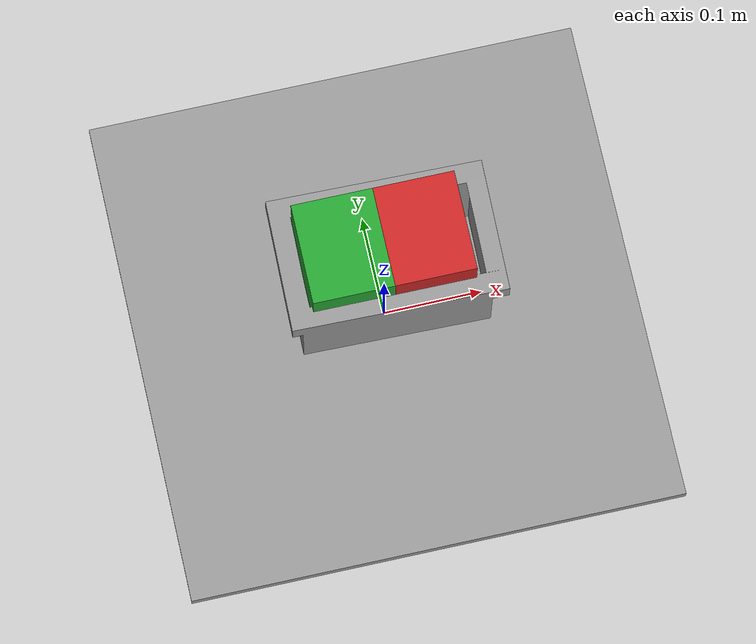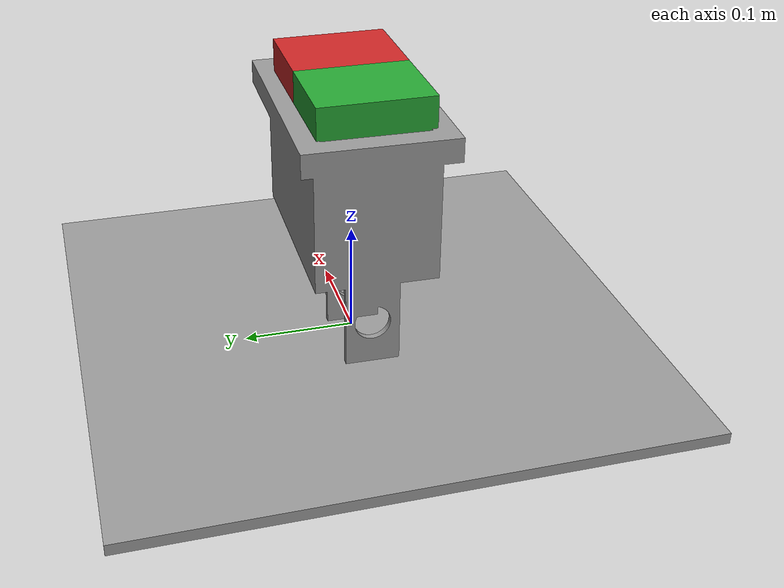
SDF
<?xml version="1.0" ?>
<sdf version="1.5">
  <model name="power_switch">
    <pose>0 0 0.155 0 3.14 0</pose>
    <link name="body">
      <collision name="collision">
        <pose>0 0 0.0 0 0 0</pose>
        <geometry>
          <mesh>
            <uri>model://power_switch/meshes/switch_no_button.dae</uri>
            <scale>0.01 0.01 0.01</scale>
          </mesh>
        </geometry>
      </collision>
      <visual name="visual">
        <pose>0 0 0.0 0 0 0</pose>
        <geometry>
          <mesh>
            <uri>model://power_switch/meshes/switch_no_button.dae</uri>
            <scale>0.01 0.01 0.01</scale>
          </mesh>
        </geometry>
        <material>
          <script>
            <uri>file://media/materials/scripts/gazebo.material</uri>
            <name>Gazebo/Grey</name>
          </script>
        </material>
      </visual>
    </link>

    <link name="stand">
      <pose>0 0 0.15 0 0 0</pose>
      <collision name="collision">
        <geometry>
          <box>
            <size>0.5 0.5 0.01</size>
          </box>
        </geometry>
      </collision>
      <visual name="visual">
        <pose>0 0 0.0 0 0 0</pose>
        <geometry>
          <box>
            <size>0.5 0.5 0.01</size>
          </box>
        </geometry>
        <material>
          <script>
            <uri>file://media/materials/scripts/gazebo.material</uri>
            <name>Gazebo/Grey</name>
          </script>
        </material>
      </visual>
    </link>

    <link name="button">
      <pose>0.0 0.0 -0.06 0 0.0 0</pose>
      <inertial>
        <mass>0.1</mass>
        <inertia>
          <ixx>0.1</ixx>
          <ixy>0</ixy>
          <ixz>0</ixz>
          <iyy>0.00006</iyy>
          <iyz>0</iyz>
          <izz>0.1</izz>
        </inertia>
      </inertial>
      <collision name="button">
        <geometry>
          <box>
            <size>0.16 0.1 0.08</size>
          </box>
        </geometry>
      </collision>
      <visual name="button_on">
        <pose>0.04 0 0 0 0 0</pose>
        <geometry>
          <box>
            <size>0.08 0.1 0.08</size>
          </box>
        </geometry>
        <material>
          <script>
            <name>Gazebo/Green</name>
          </script>
        </material>
      </visual>
      <visual name="button_off">
        <pose>-0.04 0 0 0 0 0</pose>
        <geometry>
          <box>
            <size>0.08 0.1 0.08</size>
          </box>
        </geometry>
        <material>
          <script>
            <name>Gazebo/Red</name>
          </script>
        </material>
      </visual>
    </link>

    <joint name="button_joint" type="revolute">
      <parent>body</parent>
      <child>button</child>
      <axis>
        <xyz>0.0 1.0 0.0</xyz>
        <limit>
          <lower>-0.3</lower>
          <upper>0.3</upper>
        </limit>
        <dynamics>
          <damping>0.01</damping>
        </dynamics>
        <use_parent_model_frame>true</use_parent_model_frame>
      </axis>
      <physics>
        <ode>
          <cfm_damping>1</cfm_damping>
        </ode>
      </physics>
    </joint>

    <joint name="stand_joint" type="fixed">
      <parent>body</parent>
      <child>stand</child>
    </joint>

    <plugin filename="libSwitchPlugin.so" name="switch">
      <port>
        <name>connector0</name>
        <type>electrical</type>
      </port>
      <port>
        <name>connector1</name>
        <type>electrical</type>
      </port>
      <properties>
        <closed>true</closed>
      </properties>
      <switch_joint>button_joint</switch_joint>
    </plugin>
  </model>
</sdf>
